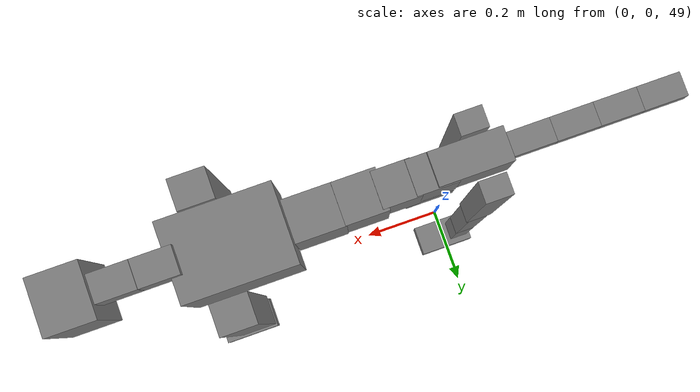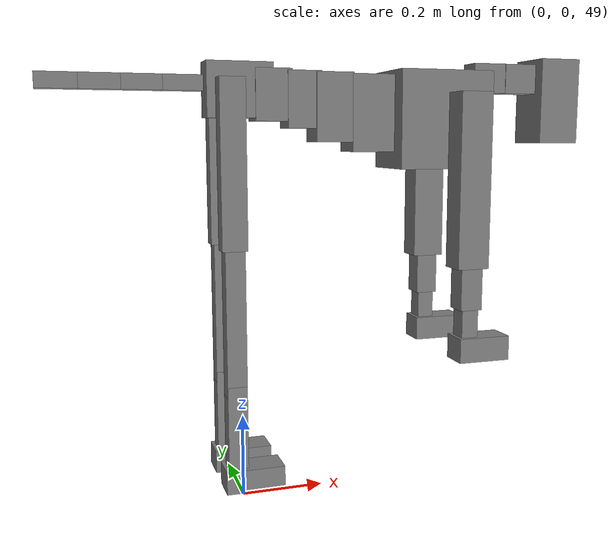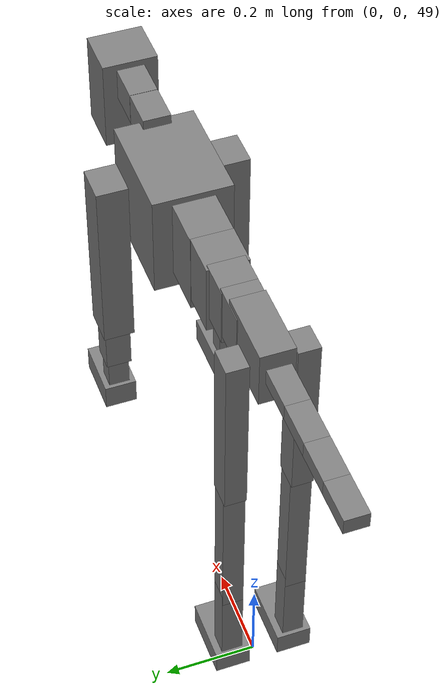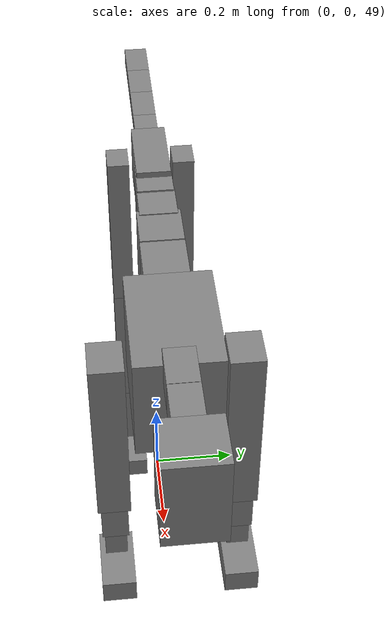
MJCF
<mujoco model="dog">

    <default>
        <joint armature="0.02" stiffness="1" damping="0.2" limited="true"/>
        <geom condim="3" friction="1 0.05 0.05" margin="0.01"/>
        <motor ctrllimited="true" ctrlrange="-1.0 1.0" forcelimited="true" gear="50"/>
    </default>

    <compiler inertiafromgeom="true" angle="radian"/>

    <option timestep="0.016" iterations="50" tolerance="1e-10" solver="Newton" jacobian="dense" cone="pyramidal"/>

    <size nconmax="20000" njmax="60000" nstack="5000000"/>
    <visual>
        <map force="0.1" zfar="30"/>
        <rgba haze="0.15 0.25 0.35 1"/>
        <quality shadowsize="2048"/>
        <global offwidth="800" offheight="800"/>
    </visual>

    <asset>
        <texture type="skybox" builtin="gradient" rgb1="0.3 0.5 0.7" rgb2="0 0 0" width="512" height="512"/>
        <texture name="texplane" type="2d" builtin="checker" rgb1=".2 .3 .4" rgb2=".1 0.15 0.2" width="512" height="512"
                 mark="cross" markrgb=".8 .8 .8"/>
        <texture name="texgeom" type="cube" builtin="flat" mark="cross" width="127" height="1278" rgb1="0.8 0.6 0.4"
                 rgb2="0.8 0.6 0.4" markrgb="1 1 1" random="0.01"/>

        <material name="matplane" reflectance="0.3" texture="texplane" texrepeat="1 1" texuniform="true"/>
        <material name="matgeom" texture="texgeom" texuniform="true" rgba="0.8 0.6 .4 1"/>
    </asset>

    <worldbody>
        <geom name="floor" pos="0 0 0" size="0 0 .25" type="plane" material="matplane" condim="3"/>

        <light directional="false" diffuse=".2 .2 .2" specular="0 0 0" pos="0 0 5" dir="0 0 -1" castshadow="false"/>
        <light mode="targetbodycom" target="torso" directional="false" diffuse=".8 .8 .8" specular="0.3 0.3 0.3"
               pos="0 0 4.0" dir="0 0 -1"/>

        <body name="root" pos="0 0 50">
            <freejoint name="root_1"/>
            <geom type="box" pos="0 0 -0.02" size="0.0774  0.0358  0.063" density="2030"/>

            <body name="spine1" pos="0.054 0 0">
                <joint name="spine1_y" axis="0 1 0" range="0 0.7" limited="true"/>
                <geom type="box" pos="0.02375 0 -0.03" size="0.04375  0.0375  0.05985" density="2030"/>

                <body name="spine2" pos="0.0612 0 0">
                    <joint name="spine2_y" axis="0 1 0" range="-0.15 0.15" limited="true"/>
                    <geom type="box" pos="0.03555  0  -0.04" size="0.04055  0.039  0.06615" density="2030"/>

                    <body name="spine3" pos="0.0730 0 0">
                        <joint name="spine3_y" axis="0 1 0" range="-0.15 0.15" limited="true"/>
                        <geom type="box" pos="0.03555  0  -0.057" size="0.04555  0.0445  0.081" density="2030"/>

                        <body name="spine4" pos="0.0780 0 0">
                            <joint name="spine4_y" axis="0 1 0" range="-0.15 0.15" limited="true"/>
                            <geom type="box" pos="0.05265  0  -0.07" size="0.05265  0.045  0.09135" density="2030"/>

                            <body name="torso" pos="0.1082 0 0">
                                <joint name="torso_y" axis="0 1 0" range="-0.15 0.15" limited="true"/>
                                <geom type="box" pos="0.11925  0  -0.085" size="0.11925  0.085  0.11745"
                                      density="2030"/>

                                <body name="neck1" pos="0.2160  0   0.0180">
                                    <joint name="neck1_y" axis="0 1 0" range="-1.2  -1" limited="true"/>
                                    <geom type="box" pos="0.0423  0  0" size="0.0423  0.03  0.036" density="2325"/>

                                    <body name="neck2" pos="0.0853  0  0">
                                        <joint name="neck2_y" axis="0 1 0" range="0.1  0" limited="true"/>
                                        <geom type="box" pos="0.0423  0  0" size="0.0423  0.03  0.036" density="2325"/>

                                        <body name="head" pos="0.0853  0  0">
                                            <joint name="head_y" axis="0 1 0" range="-0.3  -0.2" limited="true"/>
                                            <geom type="box" pos="0.0531  0  -0.055" size="0.0531  0.06  0.1044"
                                                  density="4030"/>

                                        </body>
                                    </body>
                                </body>

                                <body name="front_shoulder" pos="0.156  0   -0.0480">
                                    <joint name="front_shoulder_y" axis="0 1 0" range="-1 1.5" limited="true"/>
                                    <geom type="box" pos="0 0.13 -0.1818" size="0.0398  0.0340  0.2085" density="1158"/>
                                    <geom type="box" pos="0 -0.13 -0.1818" size="0.0398  0.0340  0.2085"
                                          density="1158"/>

                                    <body name="front_elbow" pos="0  0  -0.3637">
                                        <joint name="front_elbow_y" axis="0 1 0" range="-2 0" limited="true"/>
                                        <geom type="box" pos="0 0.13 -0.0639" size="0.0274  0.0280  0.0639"
                                              density="1081"/>
                                        <geom type="box" pos="0 -0.13 -0.0639" size="0.0274  0.0280  0.0639"
                                              density="1081"/>

                                        <body name="front_wrist" pos="0  0  -0.1278">
                                            <joint name="front_wrist_y" axis="0 1 0" range="-0.2 0" limited="true"/>
                                            <geom type="box" pos="0 0.13 -0.0414" size="0.0209  0.0232  0.0545"
                                                  density="1664"/>
                                            <geom type="box" pos="0 -0.13 -0.0414" size="0.0209  0.0232  0.0545"
                                                  density="1664"/>

                                            <body name="front_finger_end" pos="0  0  -0.0828">
                                                <joint name="front_finger_y" axis="0 1 0" range="-0.4 1"
                                                       limited="true"/>
                                                <geom type="box" pos="0.0355  0.13  -0.0149"
                                                      size="0.0651  0.0355  0.0299" density="1515"/>
                                                <geom type="box" pos="0.0355  -0.13  -0.0149"
                                                      size="0.0651  0.0355  0.0299" density="1515"/>

                                            </body>

                                        </body>
                                    </body>
                                </body>

                            </body>
                        </body>
                    </body>
                </body>
            </body>

            <body name="back_hip" pos="-0.03 0 -0.018">
                <joint name="back_hip_y" axis="0 1 0" range="-1.5 0.3" limited="true"/>
                <geom type="box" pos="0 0.07 -0.1707" size="0.0296  0.0232  0.1935" density="1154"/>
                <geom type="box" pos="0 -0.07 -0.1707" size="0.0296  0.0232  0.1935" density="1154"/>

                <body name="back_knee" pos="0  0  -0.3413">
                    <joint name="back_knee_y" axis="0 1 0" range="0 2.8" limited="true"/>
                    <geom type="box" pos="0 0.07 -0.1749" size="0.0233  0.0230  0.1905" density="1227"/>
                    <geom type="box" pos="0 -0.07 -0.1749" size="0.0233  0.0230  0.1905" density="1227"/>

                    <body name="back_ankle" pos="0  0  -0.3499">
                        <joint name="back_ankle_y" axis="0 1 0" range="-2.2 0" limited="true"/>
                        <geom type="box" pos="0 0.07 -0.1010" size="0.0232  0.0232  0.1122" density="1284"/>
                        <geom type="box" pos="0 -0.07 -0.1010" size="0.0232  0.0232  0.1122" density="1284"/>

                        <body name="back_toe_end" pos="0  0  -0.2019">
                            <joint name="back_toe_y" axis="0 1 0" range="-0.4 1" limited="true"/>
                            <geom type="box" pos="0.0380  0.07  -0.0125" size="0.0698  0.0380  0.0275" density="1515"/>
                            <geom type="box" pos="0.0380  -0.07  -0.0125" size="0.0698  0.0380  0.0275" density="1515"/>

                        </body>
                    </body>
                </body>
            </body>

            <body name="tail1" pos="-0.074 0 -0.006">
                <joint name="tail1_y" axis="0 1 0" range="-0.2 0.2" limited="true"/>
                <geom type="box" pos="-0.0536  0  0" size="0.045  0.025  0.0175" density="1587"/>

                <body name="tail2" pos="-0.09 0 0">
                    <joint name="tail2_y" axis="0 1 0" range="-0.2 0.2" limited="true"/>
                    <geom type="box" pos="-0.0536  0  0" size="0.045  0.025  0.0175" density="1587"/>

                    <body name="tail3" pos="-0.09 0 0">
                        <joint name="tail3_y" axis="0 1 0" range="-0.2 0.2" limited="true"/>
                        <geom type="box" pos="-0.0536  0  0" size="0.045  0.025  0.0175" density="1587"/>

                        <body name="tail4" pos="-0.09 0 0">
                            <joint name="tail4_y" axis="0 1 0" range="-0.2 0.2" limited="true"/>
                            <geom type="box" pos="-0.0536  0  0" size="0.045  0.025  0.0175" density="1587"/>

                        </body>
                    </body>
                </body>
            </body>
        </body>
    </worldbody>

    <actuator>
        <motor joint="spine1_y" forcerange="-150 150     "/>
        <motor joint="spine2_y" forcerange="-150 150     "/>
        <motor joint="spine3_y" forcerange="-150 150     "/>
        <motor joint="spine4_y" forcerange="-150 150     "/>
        <motor joint="torso_y" forcerange="-150 150     "/>
        <motor joint="neck1_y" forcerange="-100 100       "/>
        <motor joint="neck2_y" forcerange="-100 100       "/>
        <motor joint="head_y" forcerange="-150 150       "/>
        <motor joint="front_shoulder_y" forcerange="-156.75 170.11"/>
        <motor joint="front_elbow_y" forcerange="-183.52 120.38"/>
        <motor joint="front_wrist_y" forcerange="-70.56 115.11"/>
        <motor joint="front_finger_y" forcerange="-67.45 81.96"/>
        <motor joint="back_hip_y" forcerange="-222.47 287.38"/>
        <motor joint="back_knee_y" forcerange="-230.69 303.82"/>
        <motor joint="back_angle_y" forcerange="-98.34 173.17"/>
        <motor joint="back_toe_y" forcerange="-107.15 117.22"/>
        <motor joint="tail1_y" forcerange="-50 50     "/>
        <motor joint="tail2_y" forcerange="-50 50     "/>
        <motor joint="tail3_y" forcerange="-50 50     "/>
        <motor joint="tail4_y" forcerange="-50 50     "/>
    </actuator>
</mujoco>
